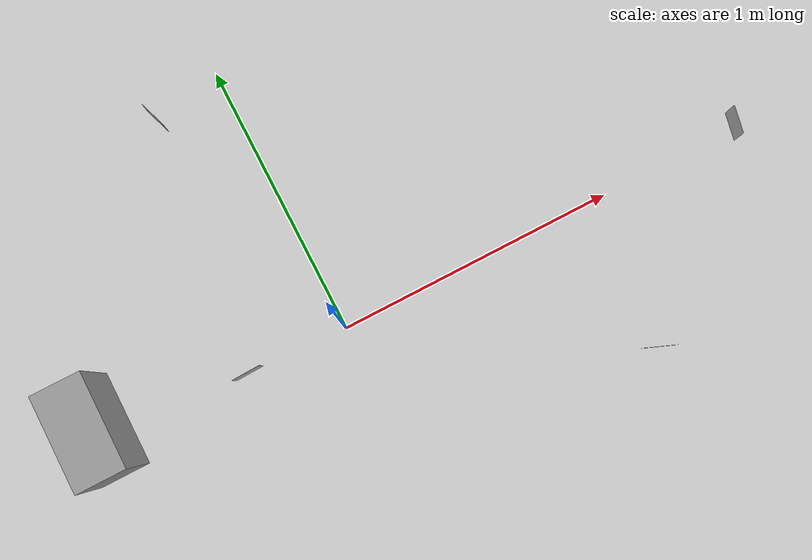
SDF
<sdf version="1.4">
 <world name="default">
  <include><uri>model://sun</uri></include>
  <include><uri>model://ground_plane</uri></include>
  <physics type="ode">
   <real_time_update_rate>1000.0</real_time_update_rate>
   <max_step_size>0.001</max_step_size>
   <real_time_factor>1</real_time_factor>
   <ode>
    <solver>
     <type>quick</type>
     <iters>150</iters>
     <precon_iters>0</precon_iters>
     <sor>1.400000</sor>
     <use_dynamic_moi_rescaling>1</use_dynamic_moi_rescaling>
    </solver>
    <constraints>
     <cfm>0.00001</cfm>
     <erp>0.2</erp>
     <contact_max_correcting_vel>2000.000000</contact_max_correcting_vel>
     <contact_surface_layer>0.01000</contact_surface_layer>
    </constraints>
   </ode>
  </physics>
  <scene><ambient>0.4 0.4 0.4 1</ambient><background>0.7 0.7 0.7 1</background><shadows>true</shadows></scene>
  <model name="unit_box">
   <pose>-0.873862 0.06853 0.160979 -7e-06 -2e-06 -0.000384</pose>
   <link name="link">
    <inertial>
     <mass>1</mass>
     <inertia>
      <ixx>0.166667</ixx>
      <ixy>0</ixy>
      <ixz>0</ixz>
      <iyy>0.166667</iyy>
      <iyz>0</iyz>
      <izz>0.166667</izz>
     </inertia>
    </inertial>
    <collision name="collision"><geometry><box><size>0.173656 0.33672 0.32196</size></box></geometry></collision>
    <visual name="visual">
     <geometry><box><size>0.173656 0.33672 0.32196</size></box></geometry>
     <material>
      <script><name>Gazebo/Grey</name><uri>file://media/materials/scripts/gazebo.material</uri></script>
     </material>
    </visual>
   </link>
  </model>
  <model name="Marker ID-1">
   <static>1</static>
   <link name="link">
    <pose>0 0 0.0005 0 -0 0</pose>
    <collision name="collision"><geometry><box><size>0.1 0.1 0.001</size></box></geometry></collision>
    <visual name="visual">
     <geometry><box><size>0.1 0.1 0.001</size></box></geometry>
     <material>
      <script>
       <name>marker_id_1</name>
       <uri>model://marker_1/materials/scripts/</uri>
       <uri>model://marker_1/materials/textures/</uri>
      </script>
     </material>
    </visual>
   </link>
   <pose>-0.347969 0.005206 0.141163 1.60204 -1.54689 -3.14159</pose>
  </model>
  <model name="Marker-ID-0">
   <static>1</static>
   <link name="link">
    <pose>0 0 0.0005 0 -0 0</pose>
    <collision name="collision"><geometry><box><size>0.1 0.1 0.001</size></box></geometry></collision>
    <visual name="visual">
     <geometry><box><size>0.1 0.1 0.001</size></box></geometry>
     <material>
      <script>
       <name>marker_id_0</name>
       <uri>model://marker_0/materials/scripts/</uri>
       <uri>model://marker_0/materials/textures/</uri>
      </script>
     </material>
    </visual>
   </link>
   <pose>-0.249497 0.927642 0.091574 0.330843 -1.56394 0</pose>
  </model>
  <model name="Marker ID-2">
   <static>1</static>
   <link name="link">
    <pose>0 0 0.0005 0 -0 0</pose>
    <collision name="collision"><geometry><box><size>0.1 0.1 0.001</size></box></geometry></collision>
    <visual name="visual">
     <geometry><box><size>0.1 0.1 0.001</size></box></geometry>
     <material>
      <script>
       <name>marker_id_2</name>
       <uri>model://marker_2/materials/scripts/</uri>
       <uri>model://marker_2/materials/textures/</uri>
      </script>
     </material>
    </visual>
   </link>
   <pose>1.47791 0.004645 0.12047 -0.207759 -1.5473 -0</pose>
  </model>
  <model name="Marker ID-3">
   <static>1</static>
   <link name="link">
    <pose>0 0 0.0005 0 -0 0</pose>
    <collision name="collision"><geometry><box><size>0.1 0.1 0.001</size></box></geometry></collision>
    <visual name="visual">
     <geometry><box><size>0.1 0.1 0.001</size></box></geometry>
     <material>
      <script>
       <name>marker_id_3</name>
       <uri>model://marker_3/materials/scripts/</uri>
       <uri>model://marker_3/materials/textures/</uri>
      </script>
     </material>
    </visual>
   </link>
   <pose>0.897116 -0.538043 0.075372 1.59912 0.011167 -0.375484</pose>
  </model>
 </world>
</sdf>
